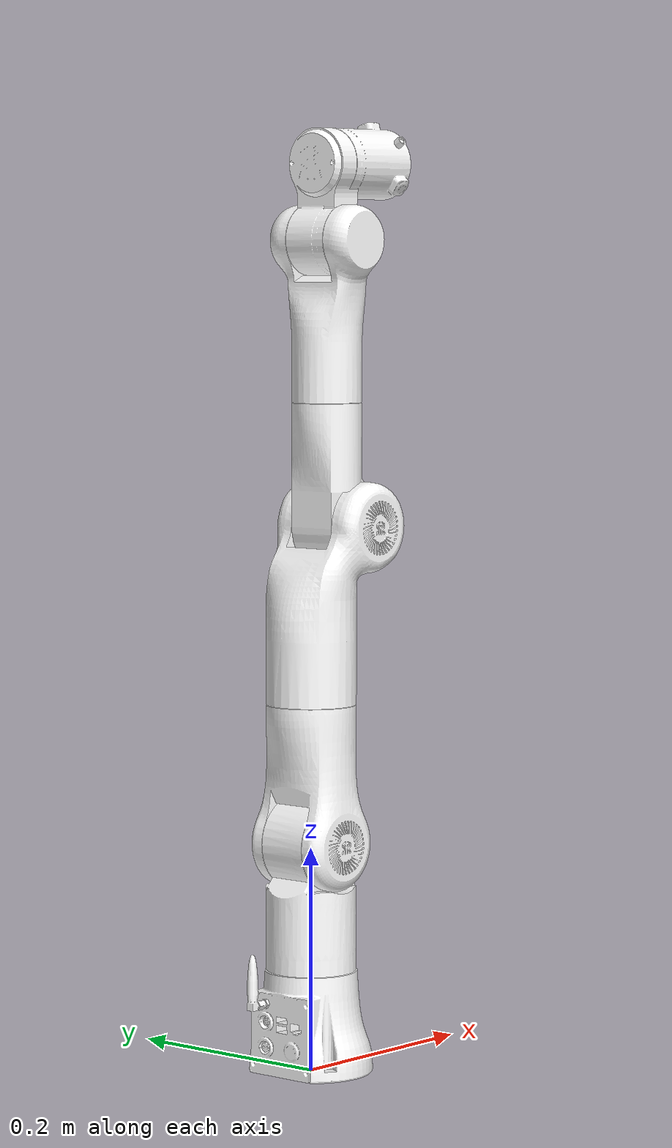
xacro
<?xml version="1.0"?>
<robot xmlns:xacro="http://www.ros.org/wiki/xacro" name="rm_gen72_description">

    <!-- Used for fixing robot to Gazebo 'base_link' 将机械手的基座固定在世界坐标上-->
    <link name="world"/>
    <joint name="fixed" type="fixed">
        <parent link="world"/>
        <child link="base_link"/>
    </joint>

    <!-- Import claw_description urdf file -->
    <xacro:include filename="$(find rm_description)/urdf/rm_gen72_II_gazebo.urdf" />

    <!-- 对一些link进行gazebo的属性设置 -->
    <gazebo reference="base_link">
        <self_collide>false</self_collide>
        <gravity>false</gravity>
    </gazebo>
    <gazebo reference="Link1">
        <material>Gazebo/White</material>
        <self_collide>false</self_collide>
        <gravity>false</gravity>
    </gazebo>
    <gazebo reference="Link2">
        <material>Gazebo/White</material>
        <gravity>false</gravity>
    </gazebo>
    <gazebo reference="Link3">
        <material>Gazebo/White</material>
        <gravity>false</gravity>
    </gazebo>
    <gazebo reference="Link4">
        <material>Gazebo/White</material>
        <gravity>false</gravity>
    </gazebo>
    <gazebo reference="Link5">
        <material>Gazebo/White</material>
        <gravity>false</gravity>
    </gazebo>
    <gazebo reference="Link6">
        <material>Gazebo/White</material>
        <gravity>false</gravity>
    </gazebo>
    <gazebo reference="Link7">
        <material>Gazebo/White</material>
        <gravity>false</gravity>
    </gazebo>

    <gazebo>
                <self_collide>true</self_collide>
    </gazebo>

    <!-- 声明ros2_control -->
    <ros2_control name="GazeboSystem" type="system">
        <hardware>
            <plugin>gazebo_ros2_control/GazeboSystem</plugin>
        </hardware>
        <joint name="joint1">
            <command_interface name="position"/>
            <state_interface name="position">
                <param name="initial_value">0</param>
            </state_interface>
            <state_interface name="velocity"/>
        </joint>
        <joint name="joint2">
            <command_interface name="position"/>
            <state_interface name="position">
                <param name="initial_value">0</param>
            </state_interface>
            <state_interface name="velocity"/>
        </joint>
        <joint name="joint3">
            <command_interface name="position"/>
            <state_interface name="position">
                <param name="initial_value">0</param>
            </state_interface>
            <state_interface name="velocity"/>
        </joint>
        <joint name="joint4">
            <command_interface name="position"/>
            <state_interface name="position">
                <param name="initial_value">0</param>
            </state_interface>
            <state_interface name="velocity"/>
        </joint>
        <joint name="joint5">
            <command_interface name="position"/>
            <state_interface name="position">
                <param name="initial_value">0</param>
            </state_interface>
            <state_interface name="velocity"/>
        </joint>
        <joint name="joint6">
            <command_interface name="position"/>
            <state_interface name="position">
                <param name="initial_value">0</param>
            </state_interface>
            <state_interface name="velocity"/>
        </joint>
        <joint name="joint7">
            <command_interface name="position"/>
            <state_interface name="position">
                <param name="initial_value">0</param>
            </state_interface>
            <state_interface name="velocity"/>
        </joint>
    </ros2_control>

    <!-- 加载ros2_control插件 -->
    <gazebo>
        <plugin filename="libgazebo_ros2_control.so" name="gazebo_ros2_control">
            <parameters>$(find rm_gen72_config)/config/ros2_controllers.yaml</parameters>
            <robot_param>robot_description</robot_param>
            <robot_param_node>robot_state_publisher</robot_param_node>
        </plugin>
    </gazebo>

</robot>

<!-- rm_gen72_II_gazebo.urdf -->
<robot
  name="rm_gen72_description">
  <link
    name="base_link">
    <inertial>
      <origin
        xyz="0.000712087165808114 0.000118093249492777 0.0414067848053686"
        rpy="0 0 0" />
      <mass
        value="0.620373115484278" />
      <inertia
        ixx="0.00079889770688379"
        ixy="3.8775095880542E-06"
        ixz="3.23421606393105E-05"
        iyy="0.000777470500786011"
        iyz="-2.32809910225287E-06"
        izz="0.000713374333260858" />
    </inertial>
    <visual>
      <origin
        xyz="0 0 0"
        rpy="0 0 0" />
      <geometry>
        <mesh
          filename="file://$(find rm_description)/meshes/rm_gen72_II_arm/base_link.STL" />
      </geometry>
      <material
        name="">
        <color
          rgba="1 1 1 1" />
      </material>
    </visual>
    <collision>
      <origin
        xyz="0 0 0"
        rpy="0 0 0" />
      <geometry>
        <mesh
          filename="file://$(find rm_description)/meshes/rm_gen72_II_arm/base_link.STL" />
      </geometry>
    </collision>
  </link>
  <link
    name="Link1">
    <inertial>
      <origin
        xyz="4.68738708666153E-07 -5.61515321378703E-05 -0.0517918499656395"
        rpy="0 0 0" />
      <mass
        value="0.54994312997524" />
      <inertia
        ixx="0.00111167293667467"
        ixy="-1.7809620802246E-09"
        ixz="-8.45267903175353E-09"
        iyy="0.00117264804659634"
        iyz="1.59989313798593E-06"
        izz="0.000419695190171004" />
    </inertial>
    <visual>
      <origin
        xyz="0 0 0"
        rpy="0 0 0" />
      <geometry>
        <mesh
          filename="file://$(find rm_description)/meshes/rm_gen72_II_arm/Link1.STL" />
      </geometry>
      <material
        name="">
        <color
          rgba="1 1 1 1" />
      </material>
    </visual>
    <collision>
      <origin
        xyz="0 0 0"
        rpy="0 0 0" />
      <geometry>
        <mesh
          filename="file://$(find rm_description)/meshes/rm_gen72_II_arm/Link1.STL" />
      </geometry>
    </collision>
  </link>
  <joint
    name="joint1"
    type="revolute">
    <origin
      xyz="0 0 0.2052"
      rpy="0 0 0" />
    <parent
      link="base_link" />
    <child
      link="Link1" />
    <axis
      xyz="0 0 1" />
    <limit
      lower="-3.0014"
      upper="3.0014"
      effort="21"
      velocity="3.141" />
  </joint>
  <link
    name="Link2">
    <inertial>
      <origin
        xyz="-2.88545974623732E-07 -0.0579134089220325 3.75915161120642E-06"
        rpy="0 0 0" />
      <mass
        value="0.550586463383527" />
      <inertia
        ixx="0.00141428130939839"
        ixy="-5.05132406195906E-08"
        ixz="-4.32548551993774E-08"
        iyy="0.000521773824108223"
        iyz="-9.09462967590962E-09"
        izz="0.00126884568146693" />
    </inertial>
    <visual>
      <origin
        xyz="0 0 0"
        rpy="0 0 0" />
      <geometry>
        <mesh
          filename="file://$(find rm_description)/meshes/rm_gen72_II_arm/Link2.STL" />
      </geometry>
      <material
        name="">
        <color
          rgba="1 1 1 1" />
      </material>
    </visual>
    <collision>
      <origin
        xyz="0 0 0"
        rpy="0 0 0" />
      <geometry>
        <mesh
          filename="file://$(find rm_description)/meshes/rm_gen72_II_arm/Link2.STL" />
      </geometry>
    </collision>
  </link>
  <joint
    name="joint2"
    type="revolute">
    <origin
      xyz="0 0 0"
      rpy="-1.5708 0 0" />
    <parent
      link="Link1" />
    <child
      link="Link2" />
    <axis
      xyz="0 0 1" />
    <limit
      lower="-1.8323"
      upper="1.8323"
      effort="21"
      velocity="3.141" />
  </joint>
  <link
    name="Link3">
    <inertial>
      <origin
        xyz="0.0107298626179935 9.62004722863946E-07 -0.0695594229370219"
        rpy="0 0 0" />
      <mass
        value="0.82968557502544" />
      <inertia
        ixx="0.00280001568966415"
        ixy="-1.44008311104275E-08"
        ixz="-0.000595023175409376"
        iyy="0.00283701746914158"
        iyz="-2.19949205300414E-08"
        izz="0.00105779244171461" />
    </inertial>
    <visual>
      <origin
        xyz="0 0 0"
        rpy="0 0 0" />
      <geometry>
        <mesh
          filename="file://$(find rm_description)/meshes/rm_gen72_II_arm/Link3.STL" />
      </geometry>
      <material
        name="">
        <color
          rgba="1 1 1 1" />
      </material>
    </visual>
    <collision>
      <origin
        xyz="0 0 0"
        rpy="0 0 0" />
      <geometry>
        <mesh
          filename="file://$(find rm_description)/meshes/rm_gen72_II_arm/Link3.STL" />
      </geometry>
    </collision>
  </link>
  <joint
    name="joint3"
    type="revolute">
    <origin
      xyz="0 -0.28 0"
      rpy="1.5708 0 0" />
    <parent
      link="Link2" />
    <child
      link="Link3" />
    <axis
      xyz="0 0 1" />
    <limit
      lower="-3.0014"
      upper="3.0014"
      effort="21"
      velocity="3.141" />
  </joint>
  <link
    name="Link4">
    <inertial>
      <origin
        xyz="-0.013111895152949 0.0451503357451828 -2.31513926694886E-07"
        rpy="0 0 0" />
      <mass
        value="0.290621238098372" />
      <inertia
        ixx="0.000529647096878416"
        ixy="8.2565173990464E-05"
        ixz="6.55720933001501E-10"
        iyy="0.000194605004006168"
        iyz="8.64015145346353E-10"
        izz="0.000590168359619798" />
    </inertial>
    <visual>
      <origin
        xyz="0 0 0"
        rpy="0 0 0" />
      <geometry>
        <mesh
          filename="file://$(find rm_description)/meshes/rm_gen72_II_arm/Link4.STL" />
      </geometry>
      <material
        name="">
        <color
          rgba="1 1 1 1" />
      </material>
    </visual>
    <collision>
      <origin
        xyz="0 0 0"
        rpy="0 0 0" />
      <geometry>
        <mesh
          filename="file://$(find rm_description)/meshes/rm_gen72_II_arm/Link4.STL" />
      </geometry>
    </collision>
  </link>
  <joint
    name="joint4"
    type="revolute">
    <origin
      xyz="0.040000186844245 0 0"
      rpy="1.5707963267949 0 0" />
    <parent
      link="Link3" />
    <child
      link="Link4" />
    <axis
      xyz="0 0 1" />
    <limit
      lower="-2.8792"
      upper="0.9597"
      effort="21"
      velocity="3.141" />
  </joint>
  <link
    name="Link5">
    <inertial>
      <origin
        xyz="-1.18843087107065E-06 -8.54985729573327E-05 -0.0632725760574326"
        rpy="0 0 0" />
      <mass
        value="0.451198262168411" />
      <inertia
        ixx="0.00129051318495878"
        ixy="3.48651894301762E-09"
        ixz="-2.37821560469814E-10"
        iyy="0.00115953902595173"
        iyz="2.42057250676721E-06"
        izz="0.000327049806404794" />
    </inertial>
    <visual>
      <origin
        xyz="0 0 0"
        rpy="0 0 0" />
      <geometry>
        <mesh
          filename="file://$(find rm_description)/meshes/rm_gen72_II_arm/Link5.STL" />
      </geometry>
      <material
        name="">
        <color
          rgba="1 1 1 1" />
      </material>
    </visual>
    <collision>
      <origin
        xyz="0 0 0"
        rpy="0 0 0" />
      <geometry>
        <mesh
          filename="file://$(find rm_description)/meshes/rm_gen72_II_arm/Link5.STL" />
      </geometry>
    </collision>
  </link>
  <joint
    name="joint5"
    type="revolute">
    <origin
      xyz="-0.018999 0.2525 0"
      rpy="-1.5708 0 0" />
    <parent
      link="Link4" />
    <child
      link="Link5" />
    <axis
      xyz="0 0 1" />
    <limit
      lower="-3.0014"
      upper="3.0014"
      effort="5"
      velocity="3.926" />
  </joint>
  <link
    name="Link6">
    <inertial>
      <origin
        xyz="0.0242920438561028 0.00255443844699678 -6.53849925857914E-05"
        rpy="0 0 0" />
      <mass
        value="0.20756793295766" />
      <inertia
        ixx="7.4545186661251E-05"
        ixy="-2.26966452986669E-05"
        ixz="-2.99738463100114E-07"
        iyy="0.000286536832716846"
        iyz="-3.37463552033454E-08"
        izz="0.000286928462037518" />
    </inertial>
    <visual>
      <origin
        xyz="0 0 0"
        rpy="0 0 0" />
      <geometry>
        <mesh
          filename="file://$(find rm_description)/meshes/rm_gen72_II_arm/Link6.STL" />
      </geometry>
      <material
        name="">
        <color
          rgba="1 1 1 1" />
      </material>
    </visual>
    <collision>
      <origin
        xyz="0 0 0"
        rpy="0 0 0" />
      <geometry>
        <mesh
          filename="file://$(find rm_description)/meshes/rm_gen72_II_arm/Link6.STL" />
      </geometry>
    </collision>
  </link>
  <joint
    name="joint6"
    type="revolute">
    <origin
      xyz="0 0 0"
      rpy="1.5708 -1.5708 0" />
    <parent
      link="Link5" />
    <child
      link="Link6" />
    <axis
      xyz="0 0 1" />
    <limit
      lower="-1.707"
      upper="1.783"
      effort="5"
      velocity="3.926" />
  </joint>
  <link
    name="Link7">
    <inertial>
      <origin
        xyz="0.000136937499703005 0.000200934349526612 -0.0365053550059413"
        rpy="0 0 0" />
      <mass
        value="0.227931410572715" />
      <inertia
        ixx="0.00015773346282352"
        ixy="5.68055708624683E-07"
        ixz="-3.66992709847985E-07"
        iyy="0.000158192859217757"
        iyz="-5.42990345033046E-07"
        izz="0.000109722972250852" />
    </inertial>
    <visual>
      <origin
        xyz="0 0 0"
        rpy="0 0 0" />
      <geometry>
        <mesh
          filename="file://$(find rm_description)/meshes/rm_gen72_II_arm/Link7.STL" />
      </geometry>
      <material
        name="">
        <color
          rgba="1 1 1 1" />
      </material>
    </visual>
    <collision>
      <origin
        xyz="0 0 0"
        rpy="0 0 0" />
      <geometry>
        <mesh
          filename="file://$(find rm_description)/meshes/rm_gen72_II_arm/Link7.STL" />
      </geometry>
    </collision>
  </link>
  <joint
    name="joint7"
    type="continuous">
    <origin
      xyz="0.067 -0.0787 0"
      rpy="1.5708 0 0" />
    <parent
      link="Link6" />
    <child
      link="Link7" />
    <axis
      xyz="0 0 1" />
    <limit
      lower="-3.0014"
      upper="3.0014"
      effort="5"
      velocity="3.926" />
  </joint>
</robot>
